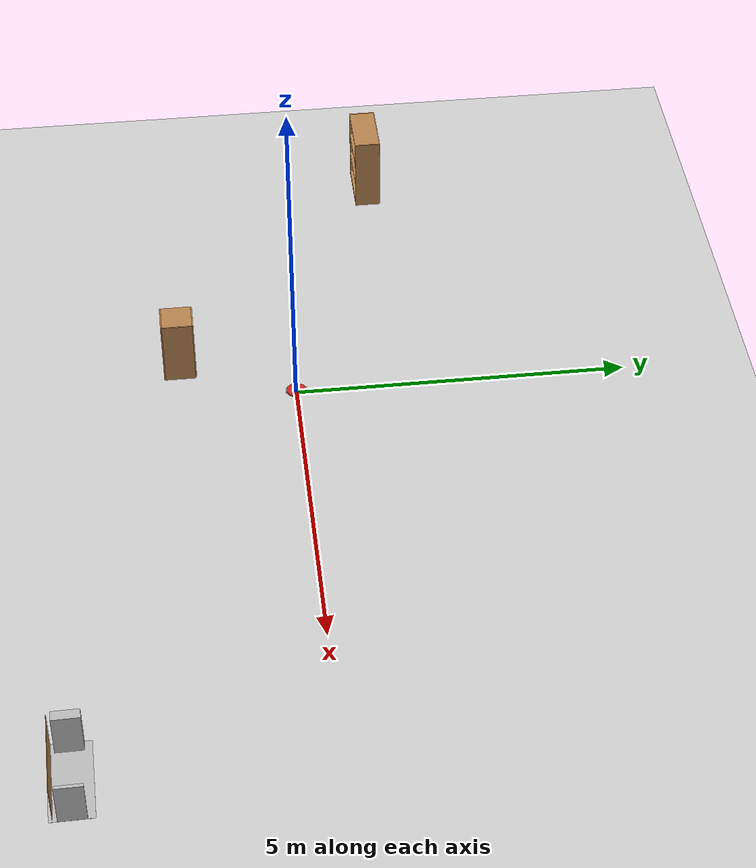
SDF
<sdf version="1.6">
 <world name="default">
  <light name="sun" type="directional">
   <pose>0 0 10 0 -0 0</pose>
   <diffuse>0.8 0.8 0.8 1</diffuse>
   <specular>0.1 0.1 0.1 1</specular>
   <attenuation>
    <range>1000</range>
    <constant>0.9</constant>
    <linear>0.01</linear>
    <quadratic>0.001</quadratic>
   </attenuation>
   <direction>-0.5 0.5 -1</direction>
  </light>
  <model name="ground_plane">
   <static>1</static>
   <link name="link">
    <collision name="collision">
     <geometry><plane><normal>0 0 1</normal><size>100 100</size></plane></geometry>
     <surface><friction><ode><mu>100</mu><mu2>50</mu2></ode></friction></surface>
    </collision>
    <visual name="visual">
     <cast_shadows>0</cast_shadows>
     <geometry><plane><normal>0 0 1</normal><size>100 100</size></plane></geometry>
     <material>
      <script><uri>file://media/materials/scripts/gazebo.material</uri><name>Gazebo/Grey</name></script>
     </material>
    </visual>
   </link>
  </model>
  <gravity>0 0 -9.8</gravity>
  <magnetic_field>6e-06 2.3e-05 -4.2e-05</magnetic_field>
  <atmosphere type="adiabatic"/>
  <physics name="default_physics" default="0" type="ode">
   <max_step_size>0.001</max_step_size>
   <real_time_factor>1</real_time_factor>
   <real_time_update_rate>1000</real_time_update_rate>
  </physics>
  <scene><ambient>0.4 0.4 0.4 1</ambient><background>0.7 0.7 0.7 1</background><shadows>1</shadows></scene>
  <spherical_coordinates>
   <surface_model>EARTH_WGS84</surface_model>
   <latitude_deg>0</latitude_deg>
   <longitude_deg>0</longitude_deg>
   <elevation>0</elevation>
   <heading_deg>0</heading_deg>
  </spherical_coordinates>
  <model name="diff_wheeled_robot">
   <link name="base_footprint">
    <inertial>
     <pose>-0.001667 0 0.041333 0 -0 0</pose>
     <mass>6.0001</mass>
     <inertia>
      <ixx>0.0304462</ixx>
      <ixy>0</ixy>
      <ixz>0.000191674</ixz>
      <iyy>0.0461545</iyy>
      <iyz>0</iyz>
      <izz>0.0740583</izz>
     </inertia>
    </inertial>
    <collision name="base_footprint_fixed_joint_lump__base_link_collision">
     <pose>0 0 0.04 0 -0 0</pose>
     <geometry><cylinder><length>0.02</length><radius>0.15</radius></cylinder></geometry>
    </collision>
    <collision name="base_footprint_fixed_joint_lump__caster_back_link_collision_1">
     <pose>-0.135 0 0.029 0 -0 0</pose>
     <geometry><sphere><radius>0.025</radius></sphere></geometry>
    </collision>
    <collision name="base_footprint_fixed_joint_lump__caster_front_link_collision_2">
     <pose>0.115 0 0.027 0 -0 0</pose>
     <geometry><sphere><radius>0.025</radius></sphere></geometry>
    </collision>
    <visual name="base_footprint_visual">
     <geometry><box><size>0.001 0.001 0.001</size></box></geometry>
     <material><script><uri>__default__</uri><name>__default__</name></script></material>
    </visual>
    <visual name="base_footprint_fixed_joint_lump__base_link_visual_1">
     <pose>0 0 0.04 0 -0 0</pose>
     <geometry><cylinder><length>0.02</length><radius>0.15</radius></cylinder></geometry>
     <material>
      <script><name>Gazebo/Red</name><uri>file://media/materials/scripts/gazebo.material</uri></script>
     </material>
    </visual>
    <visual name="base_footprint_fixed_joint_lump__caster_back_link_visual_2">
     <pose>-0.115 0 0.029 0 -0 0</pose>
     <geometry><sphere><radius>0.025</radius></sphere></geometry>
     <material><script><uri>__default__</uri><name>__default__</name></script></material>
    </visual>
    <visual name="base_footprint_fixed_joint_lump__caster_front_link_visual_3">
     <pose>0.115 0 0.027 0 -0 0</pose>
     <geometry><sphere><radius>0.025</radius></sphere></geometry>
     <material><script><uri>__default__</uri><name>__default__</name></script></material>
    </visual>
    <visual name="base_footprint_fixed_joint_lump__hokuyo_link_visual_4">
     <pose>0.125 0 0.0725 0 -0 0</pose>
     <geometry><box><size>0.05 0.05 0.05</size></box></geometry>
     <material>
      <script><name>Gazebo/Blue</name><uri>file://media/materials/scripts/gazebo.material</uri></script>
     </material>
    </visual>
    <sensor name="head_hokuyo_sensor" type="ray">
     <visualize>0</visualize>
     <update_rate>40</update_rate>
     <ray>
      <scan>
       <horizontal>
        <samples>720</samples>
        <resolution>1</resolution>
        <min_angle>-1.5708</min_angle>
        <max_angle>1.5708</max_angle>
       </horizontal>
       <vertical><samples>1</samples><min_angle>0</min_angle><max_angle>0</max_angle></vertical>
      </scan>
      <range><min>0.1</min><max>10</max><resolution>0.001</resolution></range>
     </ray>
     <plugin name="gazebo_ros_head_hokuyo_controller" filename="libgazebo_ros_laser.so">
      <topicName>/scan</topicName>
      <frameName>hokuyo_link</frameName>
      <robotNamespace>/</robotNamespace>
     </plugin>
     <pose>0.125 0 0.0725 0 -0 0</pose>
    </sensor>
   </link>
   <link name="front_left_wheel">
    <pose>0 -0.15 0.04 0 -0 0</pose>
    <inertial>
     <mass>2.5</mass>
     <inertia>
      <ixx>0.00108333</ixx>
      <ixy>0</ixy>
      <ixz>0</ixz>
      <iyy>0.00108333</iyy>
      <iyz>0</iyz>
      <izz>0.002</izz>
     </inertia>
    </inertial>
    <collision name="front_left_wheel_collision">
     <pose>0 0 0 1.5708 -0 0</pose>
     <geometry><cylinder><length>0.02</length><radius>0.04</radius></cylinder></geometry>
     <surface>
      <contact><ode><kp>1e+07</kp><kd>1</kd></ode></contact>
      <friction><ode><mu>1</mu><mu2>1</mu2><fdir1>1 0 0</fdir1></ode></friction>
     </surface>
    </collision>
    <visual name="front_left_wheel_visual">
     <pose>0 0 0 1.5708 -0 0</pose>
     <geometry><cylinder><length>0.02</length><radius>0.04</radius></cylinder></geometry>
     <material>
      <script><name>Gazebo/Grey</name><uri>file://media/materials/scripts/gazebo.material</uri></script>
     </material>
    </visual>
   </link>
   <joint name="front_left_wheel_joint" type="revolute">
    <child>front_left_wheel</child>
    <parent>base_footprint</parent>
    <axis>
     <xyz>0 1 0</xyz>
     <limit><lower>-1e+16</lower><upper>1e+16</upper></limit>
     <dynamics><spring_reference>0</spring_reference><spring_stiffness>0</spring_stiffness></dynamics>
     <use_parent_model_frame>1</use_parent_model_frame>
    </axis>
   </joint>
   <link name="front_right_wheel">
    <pose>0 0.15 0.04 0 -0 0</pose>
    <inertial>
     <mass>2.5</mass>
     <inertia>
      <ixx>0.00108333</ixx>
      <ixy>0</ixy>
      <ixz>0</ixz>
      <iyy>0.00108333</iyy>
      <iyz>0</iyz>
      <izz>0.002</izz>
     </inertia>
    </inertial>
    <collision name="front_right_wheel_collision">
     <pose>0 0 0 1.5708 -0 0</pose>
     <geometry><cylinder><length>0.02</length><radius>0.04</radius></cylinder></geometry>
     <surface>
      <contact><ode><kp>1e+07</kp><kd>1</kd></ode></contact>
      <friction><ode><mu>1</mu><mu2>1</mu2><fdir1>1 0 0</fdir1></ode></friction>
     </surface>
    </collision>
    <visual name="front_right_wheel_visual">
     <pose>0 0 0 1.5708 -0 0</pose>
     <geometry><cylinder><length>0.02</length><radius>0.04</radius></cylinder></geometry>
     <material>
      <script><name>Gazebo/Grey</name><uri>file://media/materials/scripts/gazebo.material</uri></script>
     </material>
    </visual>
   </link>
   <joint name="front_right_wheel_joint" type="revolute">
    <child>front_right_wheel</child>
    <parent>base_footprint</parent>
    <axis>
     <xyz>0 1 0</xyz>
     <limit><lower>-1e+16</lower><upper>1e+16</upper></limit>
     <dynamics><spring_reference>0</spring_reference><spring_stiffness>0</spring_stiffness></dynamics>
     <use_parent_model_frame>1</use_parent_model_frame>
    </axis>
   </joint>
   <static>0</static>
   <plugin name="differential_drive_controller" filename="libgazebo_ros_diff_drive.so">
    <legacyMode>true</legacyMode>
    <rosDebugLevel>Debug</rosDebugLevel>
    <publishWheelTF>false</publishWheelTF>
    <robotNamespace>/</robotNamespace>
    <publishTf>1</publishTf>
    <publishWheelJointState>false</publishWheelJointState>
    <alwaysOn>true</alwaysOn>
    <updateRate>100.0</updateRate>
    <leftJoint>front_left_wheel_joint</leftJoint>
    <rightJoint>front_right_wheel_joint</rightJoint>
    <wheelSeparation>0.3</wheelSeparation>
    <wheelDiameter>0.08</wheelDiameter>
    <broadcastTF>1</broadcastTF>
    <wheelTorque>30</wheelTorque>
    <wheelAcceleration>1.8</wheelAcceleration>
    <commandTopic>cmd_vel</commandTopic>
    <odometryFrame>odom</odometryFrame>
    <odometryTopic>odom</odometryTopic>
    <robotBaseFrame>base_footprint</robotBaseFrame>
   </plugin>
   <pose>0.0002 1e-06 1.5e-05 0 -0.02965 0.00027</pose>
  </model>
  <model name="bookshelf">
   <static>1</static>
   <link name="link">
    <inertial><mass>1</mass></inertial>
    <collision name="back">
     <pose>0 0.005 0.6 0 -0 0</pose>
     <geometry><box><size>0.9 0.01 1.2</size></box></geometry>
    </collision>
    <visual name="visual1">
     <pose>0 0.005 0.6 0 -0 0</pose>
     <geometry><box><size>0.9 0.01 1.2</size></box></geometry>
     <material>
      <script><uri>file://media/materials/scripts/gazebo.material</uri><name>Gazebo/Wood</name></script>
     </material>
    </visual>
    <collision name="left_side">
     <pose>0.45 -0.195 0.6 0 -0 0</pose>
     <geometry><box><size>0.02 0.4 1.2</size></box></geometry>
    </collision>
    <visual name="visual2">
     <pose>0.45 -0.195 0.6 0 -0 0</pose>
     <geometry><box><size>0.02 0.4 1.2</size></box></geometry>
     <material>
      <script><uri>file://media/materials/scripts/gazebo.material</uri><name>Gazebo/Wood</name></script>
     </material>
    </visual>
    <collision name="right_side">
     <pose>-0.45 -0.195 0.6 0 -0 0</pose>
     <geometry><box><size>0.02 0.4 1.2</size></box></geometry>
    </collision>
    <visual name="visual3">
     <pose>-0.45 -0.195 0.6 0 -0 0</pose>
     <geometry><box><size>0.02 0.4 1.2</size></box></geometry>
     <material>
      <script><uri>file://media/materials/scripts/gazebo.material</uri><name>Gazebo/Wood</name></script>
     </material>
    </visual>
    <collision name="bottom">
     <pose>0 -0.195 0.03 0 -0 0</pose>
     <geometry><box><size>0.88 0.4 0.06</size></box></geometry>
    </collision>
    <visual name="visual4">
     <pose>0 -0.195 0.03 0 -0 0</pose>
     <geometry><box><size>0.88 0.4 0.06</size></box></geometry>
     <material>
      <script><uri>file://media/materials/scripts/gazebo.material</uri><name>Gazebo/Wood</name></script>
     </material>
    </visual>
    <collision name="top">
     <pose>0 -0.195 1.19 0 -0 0</pose>
     <geometry><box><size>0.88 0.4 0.02</size></box></geometry>
    </collision>
    <visual name="visual5">
     <pose>0 -0.195 1.19 0 -0 0</pose>
     <geometry><box><size>0.88 0.4 0.02</size></box></geometry>
     <material>
      <script><uri>file://media/materials/scripts/gazebo.material</uri><name>Gazebo/Wood</name></script>
     </material>
    </visual>
    <collision name="low_shelf">
     <pose>0 -0.195 0.43 0 -0 0</pose>
     <geometry><box><size>0.88 0.4 0.02</size></box></geometry>
    </collision>
    <visual name="visual6">
     <pose>0 -0.195 0.43 0 -0 0</pose>
     <geometry><box><size>0.88 0.4 0.02</size></box></geometry>
     <material>
      <script><uri>file://media/materials/scripts/gazebo.material</uri><name>Gazebo/Wood</name></script>
     </material>
    </visual>
    <collision name="high_shelf">
     <pose>0 -0.195 0.8 0 -0 0</pose>
     <geometry><box><size>0.88 0.4 0.02</size></box></geometry>
    </collision>
    <visual name="visual7">
     <pose>0 -0.195 0.8 0 -0 0</pose>
     <geometry><box><size>0.88 0.4 0.02</size></box></geometry>
     <material>
      <script><uri>file://media/materials/scripts/gazebo.material</uri><name>Gazebo/Wood</name></script>
     </material>
    </visual>
   </link>
   <pose>-5.02951 1.76493 0 0 -0 0</pose>
  </model>
  <model name="cabinet">
   <static>1</static>
   <link name="cabinet_bottom_plate">
    <inertial>
     <pose>0 0 -1 0 -0 0</pose>
     <inertia><ixx>2.05</ixx><ixy>0</ixy><ixz>0</ixz><iyy>2.05</iyy><iyz>0</iyz><izz>2.05</izz></inertia>
     <mass>25</mass>
    </inertial>
    <collision name="cabinet_bottom_plate_geom">
     <pose>0 0 0.01 0 -0 0</pose>
     <geometry><box><size>0.45 0.45 0.02</size></box></geometry>
    </collision>
    <visual name="cabinet_bottom_plate_geom_visual">
     <pose>0 0 0.01 0 -0 0</pose>
     <geometry><box><size>0.45 0.45 0.02</size></box></geometry>
     <material>
      <script><uri>file://media/materials/scripts/gazebo.material</uri><name>Gazebo/Wood</name></script>
     </material>
    </visual>
    <collision name="cabinet_bottom_plate_geom_cabinet_back_plate">
     <pose>0.235 0 0.51 0 -0 0</pose>
     <geometry><box><size>0.02 0.45 1.02</size></box></geometry>
    </collision>
    <visual name="cabinet_bottom_plate_geom_cabinet_back_plate_visual">
     <pose>0.235 0 0.51 0 -0 0</pose>
     <geometry><box><size>0.02 0.45 1.02</size></box></geometry>
     <material>
      <script><uri>file://media/materials/scripts/gazebo.material</uri><name>Gazebo/Wood</name></script>
     </material>
    </visual>
    <collision name="cabinet_bottom_plate_geom_cabinet_left_plate">
     <pose>0 0.235 0.51 0 -0 0</pose>
     <geometry><box><size>0.45 0.02 1.02</size></box></geometry>
    </collision>
    <visual name="cabinet_bottom_plate_geom_cabinet_left_plate_visual">
     <pose>0 0.235 0.51 0 -0 0</pose>
     <geometry><box><size>0.45 0.02 1.02</size></box></geometry>
     <material>
      <script><uri>file://media/materials/scripts/gazebo.material</uri><name>Gazebo/Wood</name></script>
     </material>
    </visual>
    <collision name="cabinet_bottom_plate_geom_cabinet_middle_plate">
     <pose>0 0 0.51 0 -0 0</pose>
     <geometry><box><size>0.45 0.45 0.02</size></box></geometry>
    </collision>
    <visual name="cabinet_bottom_plate_geom_cabinet_middle_plate_visual">
     <pose>0 0 0.51 0 -0 0</pose>
     <geometry><box><size>0.45 0.45 0.02</size></box></geometry>
     <material>
      <script><uri>file://media/materials/scripts/gazebo.material</uri><name>Gazebo/Wood</name></script>
     </material>
    </visual>
    <collision name="cabinet_bottom_plate_geom_cabinet_right_plate">
     <pose>0 -0.235 0.51 0 -0 0</pose>
     <geometry><box><size>0.45 0.02 1.02</size></box></geometry>
    </collision>
    <visual name="cabinet_bottom_plate_geom_cabinet_right_plate_visual">
     <pose>0 -0.235 0.51 0 -0 0</pose>
     <geometry><box><size>0.45 0.02 1.02</size></box></geometry>
     <material>
      <script><uri>file://media/materials/scripts/gazebo.material</uri><name>Gazebo/Wood</name></script>
     </material>
    </visual>
    <collision name="cabinet_bottom_plate_geom_cabinet_top_plate">
     <pose>0 0 1.01 0 -0 0</pose>
     <geometry><box><size>0.45 0.45 0.02</size></box></geometry>
    </collision>
    <visual name="cabinet_bottom_plate_geom_cabinet_top_plate_visual">
     <pose>0 0 1.01 0 -0 0</pose>
     <geometry><box><size>0.45 0.45 0.02</size></box></geometry>
     <material>
      <script><uri>file://media/materials/scripts/gazebo.material</uri><name>Gazebo/Wood</name></script>
     </material>
    </visual>
   </link>
   <pose>-0.742388 -1.72177 0 0 -0 0</pose>
  </model>
  <model name="frc2016_sallyport">
   <link name="base">
    <inertial>
     <mass>50</mass>
     <pose>0 0 0.35406 0 -0 0</pose>
     <inertia><ixx>0.727808</ixx><ixy>0</ixy><ixz>0</ixz><iyy>1.77488</iyy><iyz>0</iyz><izz>1.64109</izz></inertia>
    </inertial>
    <visual name="platform">
     <pose>0 0 0.06974 0 -0 0</pose>
     <geometry><box><size>1.27 0.5969 0.003175</size></box></geometry>
    </visual>
    <collision name="platform">
     <pose>0 0 0.06974 0 -0 0</pose>
     <geometry><box><size>1.27 0.5969 0.003175</size></box></geometry>
    </collision>
    <visual name="left_column">
     <pose>-0.5588 0.00318 0.38876 0 -0 0</pose>
     <geometry><box><size>0.1524 0.38735 0.635</size></box></geometry>
    </visual>
    <collision name="left_column">
     <pose>-0.5588 0.00318 0.38876 0 -0 0</pose>
     <geometry><box><size>0.1524 0.38735 0.635</size></box></geometry>
    </collision>
    <visual name="right_column">
     <pose>0.6096 0.00635 0.38876 0 -0 0</pose>
     <geometry><box><size>0.0508 0.381 0.635</size></box></geometry>
    </visual>
    <collision name="right_column">
     <pose>0.6096 0.00635 0.38876 0 -0 0</pose>
     <geometry><box><size>0.0508 0.381 0.635</size></box></geometry>
    </collision>
    <visual name="castor1">
     <pose>-0.45886 0.15389 0.03487 0 -0 0</pose>
     <geometry><sphere><radius>0.03487</radius></sphere></geometry>
    </visual>
    <collision name="castor1">
     <pose>-0.45886 0.15389 0.03487 0 -0 0</pose>
     <geometry><sphere><radius>0.03487</radius></sphere></geometry>
    </collision>
    <visual name="castor2">
     <pose>-0.28117 -0.22559 0.03487 0 -0 0</pose>
     <geometry><sphere><radius>0.03487</radius></sphere></geometry>
    </visual>
    <collision name="castor2">
     <pose>-0.28117 -0.22559 0.03487 0 -0 0</pose>
     <geometry><sphere><radius>0.03487</radius></sphere></geometry>
    </collision>
    <visual name="castor3">
     <pose>0.27933 -0.2272 0.03487 0 -0 0</pose>
     <geometry><sphere><radius>0.03487</radius></sphere></geometry>
    </visual>
    <collision name="castor3">
     <pose>0.27933 -0.2272 0.03487 0 -0 0</pose>
     <geometry><sphere><radius>0.03487</radius></sphere></geometry>
    </collision>
    <visual name="castor4">
     <pose>0.4571 0.15424 0.03487 0 -0 0</pose>
     <geometry><sphere><radius>0.03487</radius></sphere></geometry>
    </visual>
    <collision name="castor4">
     <pose>0.4571 0.15424 0.03487 0 -0 0</pose>
     <geometry><sphere><radius>0.03487</radius></sphere></geometry>
    </collision>
   </link>
   <link name="door">
    <pose>0.02255 -0.24321 0.40332 0 -0 0</pose>
    <inertial>
     <pose>0 0 0 -1.5707 0 0</pose>
     <mass>2</mass>
     <inertia>
      <ixx>0.0619421</ixx>
      <ixy>0</ixy>
      <ixz>0</ixz>
      <iyy>0.246462</iyy>
      <iyz>0</iyz>
      <izz>0.30839</izz>
     </inertia>
    </inertial>
    <visual name="visual">
     <geometry><box><size>1.21603 0.00635 0.6096</size></box></geometry>
     <material><script><name>Gazebo/WoodFloor</name><uri>__default__</uri></script></material>
    </visual>
    <collision name="collision"><geometry><box><size>1.21603 0.00635 0.6096</size></box></geometry></collision>
   </link>
   <joint name="door_joint" type="revolute">
    <pose>-0.608015 0 0 0 -0 0</pose>
    <parent>base</parent>
    <child>door</child>
    <axis>
     <xyz>0 0 1</xyz>
     <limit><lower>-3.1415</lower><upper>0</upper></limit>
     <use_parent_model_frame>0</use_parent_model_frame>
     <dynamics><spring_reference>0</spring_reference><spring_stiffness>0</spring_stiffness></dynamics>
    </axis>
   </joint>
   <pose>7.19601 -3.47333 -2e-06 -8e-06 -0 0.017728</pose>
  </model>
 </world>
</sdf>
